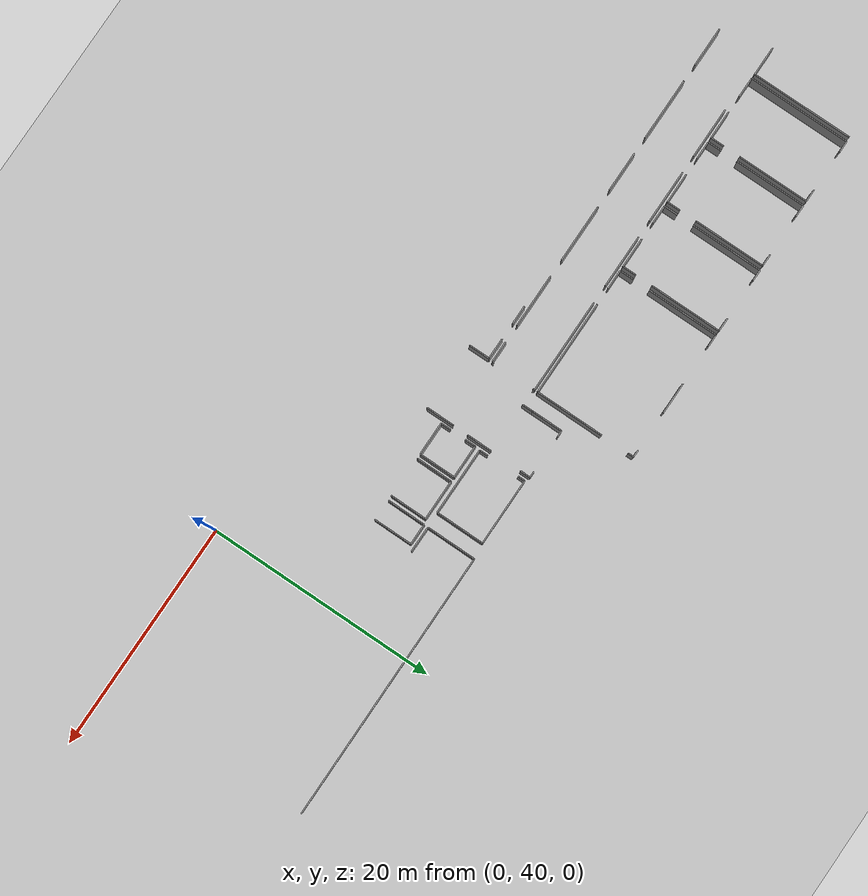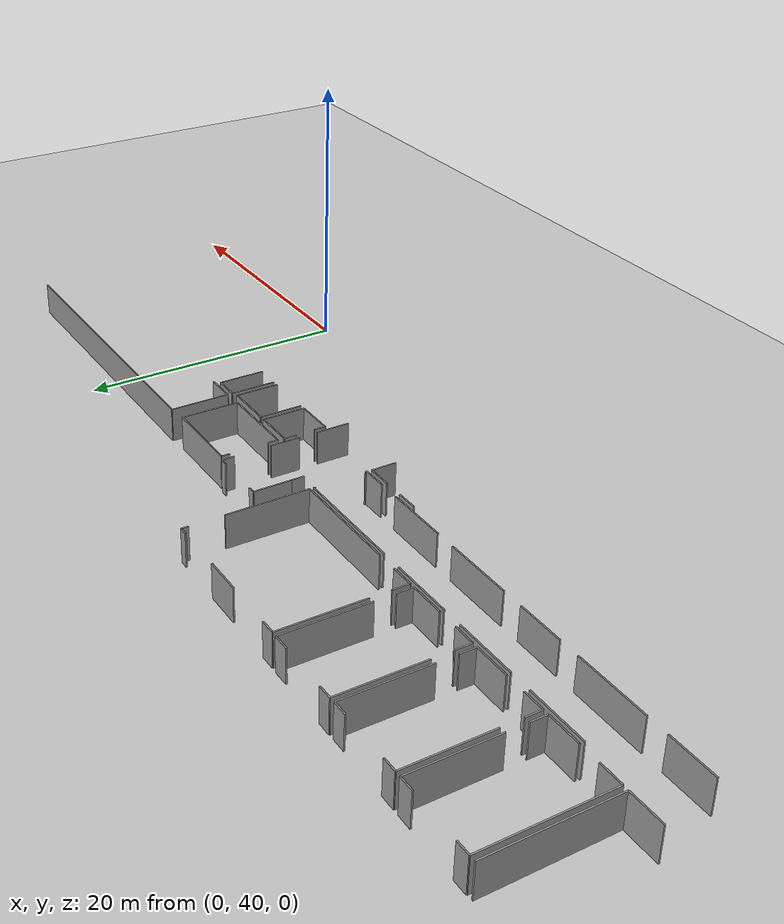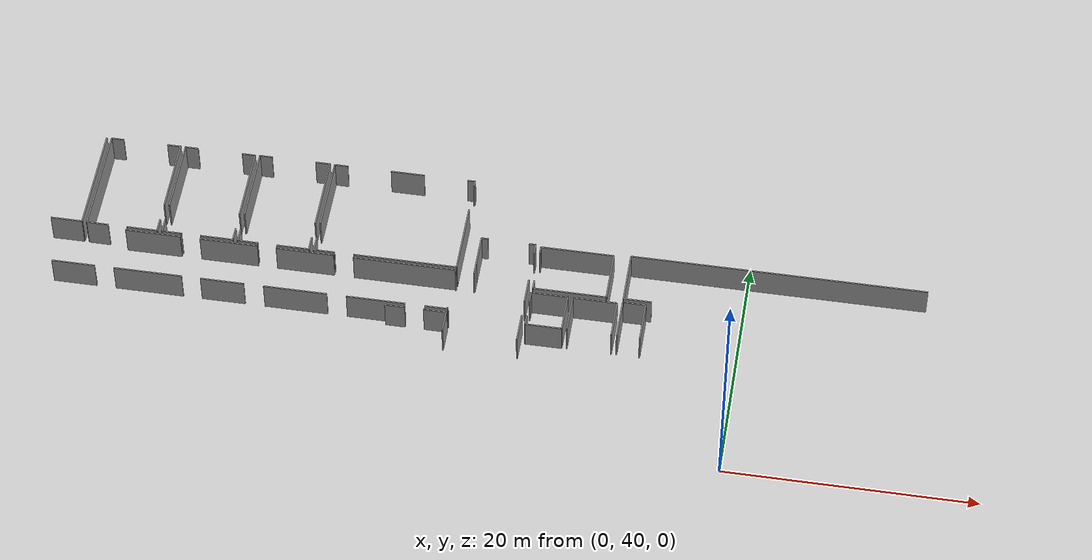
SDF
<sdf version="1.6">
 <world name="default">
  <model name="ground_plane">
   <static>1</static>
   <link name="link">
    <collision name="collision">
     <geometry><plane><normal>0 0 1</normal><size>100 100</size></plane></geometry>
     <surface><friction><ode><mu>100</mu><mu2>50</mu2></ode></friction></surface>
    </collision>
    <visual name="visual">
     <cast_shadows>0</cast_shadows>
     <geometry><plane><normal>0 0 1</normal><size>100 100</size></plane></geometry>
     <material>
      <script><uri>file://media/materials/scripts/gazebo.material</uri><name>Gazebo/Grey</name></script>
     </material>
    </visual>
   </link>
  </model>
  <model name="0510035517_A_40_1_105">
   <static>1</static>
   <link name="Wall_24">
    <collision name="Wall_24_Collision">
     <geometry><box><size>8.91303380924 0.1 2.5</size></box></geometry>
     <pose>4.45651690462 0 1.25 0 0 0</pose>
    </collision>
    <visual name="Wall_24_Visual">
     <pose>4.45651690462 0 1.25 0 0 0</pose>
     <geometry><box><size>8.91303380924 0.1 2.5</size></box></geometry>
     <material>
      <script><uri>file://media/materials/scripts/gazebo.material</uri><name>Gazebo/Grey</name></script>
      <ambient>1 1 1 1</ambient>
     </material>
    </visual>
    <pose>41.3195834366 -0.0386318725657 0 0 0 -1.57079632679</pose>
   </link>
   <link name="Wall_25">
    <collision name="Wall_25_Collision">
     <geometry><box><size>2.54029977825 0.1 2.5</size></box></geometry>
     <pose>1.27014988912 0 1.25 0 0 0</pose>
    </collision>
    <visual name="Wall_25_Visual">
     <pose>1.27014988912 0 1.25 0 0 0</pose>
     <geometry><box><size>2.54029977825 0.1 2.5</size></box></geometry>
     <material>
      <script><uri>file://media/materials/scripts/gazebo.material</uri><name>Gazebo/Grey</name></script>
      <ambient>1 1 1 1</ambient>
     </material>
    </visual>
    <pose>41.3195834366 -8.95166568181 0 0 0 3.14159265359</pose>
   </link>
   <link name="Wall_27">
    <collision name="Wall_27_Collision">
     <geometry><box><size>8.94454928423 0.1 2.5</size></box></geometry>
     <pose>4.47227464212 0 1.25 0 0 0</pose>
    </collision>
    <visual name="Wall_27_Visual">
     <pose>4.47227464212 0 1.25 0 0 0</pose>
     <geometry><box><size>8.94454928423 0.1 2.5</size></box></geometry>
     <material>
      <script><uri>file://media/materials/scripts/gazebo.material</uri><name>Gazebo/Grey</name></script>
      <ambient>1 1 1 1</ambient>
     </material>
    </visual>
    <pose>41.7186100151 -8.96996498987 0 0 0 1.57079632679</pose>
   </link>
   <link name="Wall_28">
    <collision name="Wall_28_Collision">
     <geometry><box><size>1.02755697884 0.1 2.5</size></box></geometry>
     <pose>0.513778489418 0 1.25 0 0 0</pose>
    </collision>
    <visual name="Wall_28_Visual">
     <pose>0.513778489418 0 1.25 0 0 0</pose>
     <geometry><box><size>1.02755697884 0.1 2.5</size></box></geometry>
     <material>
      <script><uri>file://media/materials/scripts/gazebo.material</uri><name>Gazebo/Grey</name></script>
      <ambient>1 1 1 1</ambient>
     </material>
    </visual>
    <pose>41.7186100151 -0.0254157056353 0 0 0 0.0</pose>
   </link>
   <link name="Wall_29">
    <collision name="Wall_29_Collision">
     <geometry><box><size>1.08804635825 0.1 2.5</size></box></geometry>
     <pose>0.544023179124 0 1.25 0 0 0</pose>
    </collision>
    <visual name="Wall_29_Visual">
     <pose>0.544023179124 0 1.25 0 0 0</pose>
     <geometry><box><size>1.08804635825 0.1 2.5</size></box></geometry>
     <material>
      <script><uri>file://media/materials/scripts/gazebo.material</uri><name>Gazebo/Grey</name></script>
      <ambient>1 1 1 1</ambient>
     </material>
    </visual>
    <pose>46.3610428064 -0.0254157056353 0 0 0 0.0</pose>
   </link>
   <link name="Wall_30">
    <collision name="Wall_30_Collision">
     <geometry><box><size>6.27412109313 0.1 2.5</size></box></geometry>
     <pose>3.13706054656 0 1.25 0 0 0</pose>
    </collision>
    <visual name="Wall_30_Visual">
     <pose>3.13706054656 0 1.25 0 0 0</pose>
     <geometry><box><size>6.27412109313 0.1 2.5</size></box></geometry>
     <material>
      <script><uri>file://media/materials/scripts/gazebo.material</uri><name>Gazebo/Grey</name></script>
      <ambient>1 1 1 1</ambient>
     </material>
    </visual>
    <pose>47.4490891646 -0.0254157056353 0 0 0 -1.57079632679</pose>
   </link>
   <link name="Wall_31">
    <collision name="Wall_31_Collision">
     <geometry><box><size>1.18793008139 0.1 2.5</size></box></geometry>
     <pose>0.593965040697 0 1.25 0 0 0</pose>
    </collision>
    <visual name="Wall_31_Visual">
     <pose>0.593965040697 0 1.25 0 0 0</pose>
     <geometry><box><size>1.18793008139 0.1 2.5</size></box></geometry>
     <material>
      <script><uri>file://media/materials/scripts/gazebo.material</uri><name>Gazebo/Grey</name></script>
      <ambient>1 1 1 1</ambient>
     </material>
    </visual>
    <pose>47.4490891646 -7.79347197601 0 0 0 -1.57079632679</pose>
   </link>
   <link name="Wall_32">
    <collision name="Wall_32_Collision">
     <geometry><box><size>2.46735670307 0.1 2.5</size></box></geometry>
     <pose>1.23367835154 0 1.25 0 0 0</pose>
    </collision>
    <visual name="Wall_32_Visual">
     <pose>1.23367835154 0 1.25 0 0 0</pose>
     <geometry><box><size>2.46735670307 0.1 2.5</size></box></geometry>
     <material>
      <script><uri>file://media/materials/scripts/gazebo.material</uri><name>Gazebo/Grey</name></script>
      <ambient>1 1 1 1</ambient>
     </material>
    </visual>
    <pose>47.4490891646 -8.9814020574 0 0 0 3.14159265359</pose>
   </link>
   <link name="Wall_33">
    <collision name="Wall_33_Collision">
     <geometry><box><size>1.75550004482 0.1 2.5</size></box></geometry>
     <pose>0.877750022412 0 1.25 0 0 0</pose>
    </collision>
    <visual name="Wall_33_Visual">
     <pose>0.877750022412 0 1.25 0 0 0</pose>
     <geometry><box><size>1.75550004482 0.1 2.5</size></box></geometry>
     <material>
      <script><uri>file://media/materials/scripts/gazebo.material</uri><name>Gazebo/Grey</name></script>
      <ambient>1 1 1 1</ambient>
     </material>
    </visual>
    <pose>43.4740728033 -8.9814020574 0 0 0 3.13507761619</pose>
   </link>
   <link name="Wall_34">
    <collision name="Wall_34_Collision">
     <geometry><box><size>1.06568053729 0.1 2.5</size></box></geometry>
     <pose>0.532840268644 0 1.25 0 0 0</pose>
    </collision>
    <visual name="Wall_34_Visual">
     <pose>0.532840268644 0 1.25 0 0 0</pose>
     <geometry><box><size>1.06568053729 0.1 2.5</size></box></geometry>
     <material>
      <script><uri>file://media/materials/scripts/gazebo.material</uri><name>Gazebo/Grey</name></script>
      <ambient>1 1 1 1</ambient>
     </material>
    </visual>
    <pose>47.856757083 -0.0264323338607 0 0 0 0.0</pose>
   </link>
   <link name="Wall_35">
    <collision name="Wall_35_Collision">
     <geometry><box><size>1.06059739616 0.1 2.5</size></box></geometry>
     <pose>0.53029869808 0 1.25 0 0 0</pose>
    </collision>
    <visual name="Wall_35_Visual">
     <pose>0.53029869808 0 1.25 0 0 0</pose>
     <geometry><box><size>1.06059739616 0.1 2.5</size></box></geometry>
     <material>
      <script><uri>file://media/materials/scripts/gazebo.material</uri><name>Gazebo/Grey</name></script>
      <ambient>1 1 1 1</ambient>
     </material>
    </visual>
    <pose>52.5482421863 -0.0264323338607 0 0 0 0.0</pose>
   </link>
   <link name="Wall_36">
    <collision name="Wall_36_Collision">
     <geometry><box><size>6.27971254837 0.1 2.5</size></box></geometry>
     <pose>3.13985627418 0 1.25 0 0 0</pose>
    </collision>
    <visual name="Wall_36_Visual">
     <pose>3.13985627418 0 1.25 0 0 0</pose>
     <geometry><box><size>6.27971254837 0.1 2.5</size></box></geometry>
     <material>
      <script><uri>file://media/materials/scripts/gazebo.material</uri><name>Gazebo/Grey</name></script>
      <ambient>1 1 1 1</ambient>
     </material>
    </visual>
    <pose>53.6088395824 -0.0264323338607 0 0 0 -1.57079632679</pose>
   </link>
   <link name="Wall_37">
    <collision name="Wall_37_Collision">
     <geometry><box><size>1.17522222858 0.1 2.5</size></box></geometry>
     <pose>0.587611114288 0 1.25 0 0 0</pose>
    </collision>
    <visual name="Wall_37_Visual">
     <pose>0.587611114288 0 1.25 0 0 0</pose>
     <geometry><box><size>1.17522222858 0.1 2.5</size></box></geometry>
     <material>
      <script><uri>file://media/materials/scripts/gazebo.material</uri><name>Gazebo/Grey</name></script>
      <ambient>1 1 1 1</ambient>
     </material>
    </visual>
    <pose>53.6088395824 -7.80008005947 0 0 0 -1.57079632679</pose>
   </link>
   <link name="Wall_38">
    <collision name="Wall_38_Collision">
     <geometry><box><size>2.6465374278 0.1 2.5</size></box></geometry>
     <pose>1.3232687139 0 1.25 0 0 0</pose>
    </collision>
    <visual name="Wall_38_Visual">
     <pose>1.3232687139 0 1.25 0 0 0</pose>
     <geometry><box><size>2.6465374278 0.1 2.5</size></box></geometry>
     <material>
      <script><uri>file://media/materials/scripts/gazebo.material</uri><name>Gazebo/Grey</name></script>
      <ambient>1 1 1 1</ambient>
     </material>
    </visual>
    <pose>53.6088395824 -8.97530228805 0 0 0 3.14159265359</pose>
   </link>
   <link name="Wall_39">
    <collision name="Wall_39_Collision">
     <geometry><box><size>1.59508968567 0.1 2.5</size></box></geometry>
     <pose>0.797544842836 0 1.25 0 0 0</pose>
    </collision>
    <visual name="Wall_39_Visual">
     <pose>0.797544842836 0 1.25 0 0 0</pose>
     <geometry><box><size>1.59508968567 0.1 2.5</size></box></geometry>
     <material>
      <script><uri>file://media/materials/scripts/gazebo.material</uri><name>Gazebo/Grey</name></script>
      <ambient>1 1 1 1</ambient>
     </material>
    </visual>
    <pose>49.4538800252 -8.97530228805 0 0 0 3.14159265359</pose>
   </link>
   <link name="Wall_40">
    <collision name="Wall_40_Collision">
     <geometry><box><size>1.19657142131 0.1 2.5</size></box></geometry>
     <pose>0.598285710655 0 1.25 0 0 0</pose>
    </collision>
    <visual name="Wall_40_Visual">
     <pose>0.598285710655 0 1.25 0 0 0</pose>
     <geometry><box><size>1.19657142131 0.1 2.5</size></box></geometry>
     <material>
      <script><uri>file://media/materials/scripts/gazebo.material</uri><name>Gazebo/Grey</name></script>
      <ambient>1 1 1 1</ambient>
     </material>
    </visual>
    <pose>47.8587903395 -8.97530228805 0 0 0 1.57079632679</pose>
   </link>
   <link name="Wall_41">
    <collision name="Wall_41_Collision">
     <geometry><box><size>6.21922350132 0.1 2.5</size></box></geometry>
     <pose>3.10961175066 0 1.25 0 0 0</pose>
    </collision>
    <visual name="Wall_41_Visual">
     <pose>3.10961175066 0 1.25 0 0 0</pose>
     <geometry><box><size>6.21922350132 0.1 2.5</size></box></geometry>
     <material>
      <script><uri>file://media/materials/scripts/gazebo.material</uri><name>Gazebo/Grey</name></script>
      <ambient>1 1 1 1</ambient>
     </material>
    </visual>
    <pose>47.8587903395 -6.24565550282 0 0 0 1.57112325772</pose>
   </link>
   <link name="Wall_42">
    <collision name="Wall_42_Collision">
     <geometry><box><size>1.20190871949 0.1 2.5</size></box></geometry>
     <pose>0.600954359747 0 1.25 0 0 0</pose>
    </collision>
    <visual name="Wall_42_Visual">
     <pose>0.600954359747 0 1.25 0 0 0</pose>
     <geometry><box><size>1.20190871949 0.1 2.5</size></box></geometry>
     <material>
      <script><uri>file://media/materials/scripts/gazebo.material</uri><name>Gazebo/Grey</name></script>
      <ambient>1 1 1 1</ambient>
     </material>
    </visual>
    <pose>54.0045621192 -8.98470609913 0 0 0 1.57079632679</pose>
   </link>
   <link name="Wall_43">
    <collision name="Wall_43_Collision">
     <geometry><box><size>6.25226358628 0.1 2.5</size></box></geometry>
     <pose>3.12613179314 0 1.25 0 0 0</pose>
    </collision>
    <visual name="Wall_43_Visual">
     <pose>3.12613179314 0 1.25 0 0 0</pose>
     <geometry><box><size>6.25226358628 0.1 2.5</size></box></geometry>
     <material>
      <script><uri>file://media/materials/scripts/gazebo.material</uri><name>Gazebo/Grey</name></script>
      <ambient>1 1 1 1</ambient>
     </material>
    </visual>
    <pose>54.0045621192 -6.25226358628 0 0 0 1.57079632679</pose>
   </link>
   <link name="Wall_44">
    <collision name="Wall_44_Collision">
     <geometry><box><size>1.02221968065 0.1 2.5</size></box></geometry>
     <pose>0.511109840326 0 1.25 0 0 0</pose>
    </collision>
    <visual name="Wall_44_Visual">
     <pose>0.511109840326 0 1.25 0 0 0</pose>
     <geometry><box><size>1.02221968065 0.1 2.5</size></box></geometry>
     <material>
      <script><uri>file://media/materials/scripts/gazebo.material</uri><name>Gazebo/Grey</name></script>
      <ambient>1 1 1 1</ambient>
     </material>
    </visual>
    <pose>54.0045621192 -0.0 0 0 0 0.0</pose>
   </link>
   <link name="Wall_45">
    <collision name="Wall_45_Collision">
     <geometry><box><size>1.17776379914 0.1 2.5</size></box></geometry>
     <pose>0.58888189957 0 1.25 0 0 0</pose>
    </collision>
    <visual name="Wall_45_Visual">
     <pose>0.58888189957 0 1.25 0 0 0</pose>
     <geometry><box><size>1.17776379914 0.1 2.5</size></box></geometry>
     <material>
      <script><uri>file://media/materials/scripts/gazebo.material</uri><name>Gazebo/Grey</name></script>
      <ambient>1 1 1 1</ambient>
     </material>
    </visual>
    <pose>58.6025174256 -0.0 0 0 0 0.0</pose>
   </link>
   <link name="Wall_46">
    <collision name="Wall_46_Collision">
     <geometry><box><size>6.31046555219 0.1 2.5</size></box></geometry>
     <pose>3.15523277609 0 1.25 0 0 0</pose>
    </collision>
    <visual name="Wall_46_Visual">
     <pose>3.15523277609 0 1.25 0 0 0</pose>
     <geometry><box><size>6.31046555219 0.1 2.5</size></box></geometry>
     <material>
      <script><uri>file://media/materials/scripts/gazebo.material</uri><name>Gazebo/Grey</name></script>
      <ambient>1 1 1 1</ambient>
     </material>
    </visual>
    <pose>59.7802812248 -0.0 0 0 0 -1.57079632679</pose>
   </link>
   <link name="Wall_47">
    <collision name="Wall_47_Collision">
     <geometry><box><size>1.18818423845 0.1 2.5</size></box></geometry>
     <pose>0.594092119225 0 1.25 0 0 0</pose>
    </collision>
    <visual name="Wall_47_Visual">
     <pose>0.594092119225 0 1.25 0 0 0</pose>
     <geometry><box><size>1.18818423845 0.1 2.5</size></box></geometry>
     <material>
      <script><uri>file://media/materials/scripts/gazebo.material</uri><name>Gazebo/Grey</name></script>
      <ambient>1 1 1 1</ambient>
     </material>
    </visual>
    <pose>59.7802812248 -7.81278791229 0 0 0 -1.57079632679</pose>
   </link>
   <link name="Wall_48">
    <collision name="Wall_48_Collision">
     <geometry><box><size>2.60663476996 0.1 2.5</size></box></geometry>
     <pose>1.30331738498 0 1.25 0 0 0</pose>
    </collision>
    <visual name="Wall_48_Visual">
     <pose>1.30331738498 0 1.25 0 0 0</pose>
     <geometry><box><size>2.60663476996 0.1 2.5</size></box></geometry>
     <material>
      <script><uri>file://media/materials/scripts/gazebo.material</uri><name>Gazebo/Grey</name></script>
      <ambient>1 1 1 1</ambient>
     </material>
    </visual>
    <pose>59.7802812248 -9.00097215074 0 0 0 3.14159265359</pose>
   </link>
   <link name="Wall_49">
    <collision name="Wall_49_Collision">
     <geometry><box><size>1.65159265391 0.1 2.5</size></box></geometry>
     <pose>0.825796326955 0 1.25 0 0 0</pose>
    </collision>
    <visual name="Wall_49_Visual">
     <pose>0.825796326955 0 1.25 0 0 0</pose>
     <geometry><box><size>1.65159265391 0.1 2.5</size></box></geometry>
     <material>
      <script><uri>file://media/materials/scripts/gazebo.material</uri><name>Gazebo/Grey</name></script>
      <ambient>1 1 1 1</ambient>
     </material>
    </visual>
    <pose>55.6560746713 -9.00097215074 0 0 0 3.13174378768</pose>
   </link>
   <link name="Wall_50">
    <collision name="Wall_50_Collision">
     <geometry><box><size>1.0982126405 0.1 2.5</size></box></geometry>
     <pose>0.549106320251 0 1.25 0 0 0</pose>
    </collision>
    <visual name="Wall_50_Visual">
     <pose>0.549106320251 0 1.25 0 0 0</pose>
     <geometry><box><size>1.0982126405 0.1 2.5</size></box></geometry>
     <material>
      <script><uri>file://media/materials/scripts/gazebo.material</uri><name>Gazebo/Grey</name></script>
      <ambient>1 1 1 1</ambient>
     </material>
    </visual>
    <pose>60.1721914057 -0.0144869522121 0 0 0 0.0</pose>
   </link>
   <link name="Wall_51">
    <collision name="Wall_51_Collision">
     <geometry><box><size>2.73142588463 0.1 2.5</size></box></geometry>
     <pose>1.36571294231 0 1.25 0 0 0</pose>
    </collision>
    <visual name="Wall_51_Visual">
     <pose>1.36571294231 0 1.25 0 0 0</pose>
     <geometry><box><size>2.73142588463 0.1 2.5</size></box></geometry>
     <material>
      <script><uri>file://media/materials/scripts/gazebo.material</uri><name>Gazebo/Grey</name></script>
      <ambient>1 1 1 1</ambient>
     </material>
    </visual>
    <pose>64.8103035271 -0.0144869522121 0 0 0 0.0</pose>
   </link>
   <link name="Wall_52">
    <collision name="Wall_52_Collision">
     <geometry><box><size>0.611756034642 0.1 2.5</size></box></geometry>
     <pose>0.305878017321 0 1.25 0 0 0</pose>
    </collision>
    <visual name="Wall_52_Visual">
     <pose>0.305878017321 0 1.25 0 0 0</pose>
     <geometry><box><size>0.611756034642 0.1 2.5</size></box></geometry>
     <material>
      <script><uri>file://media/materials/scripts/gazebo.material</uri><name>Gazebo/Grey</name></script>
      <ambient>1 1 1 1</ambient>
     </material>
    </visual>
    <pose>71.0709542962 -0.0144869522121 0 0 0 0.0</pose>
   </link>
   <link name="Wall_53">
    <collision name="Wall_53_Collision">
     <geometry><box><size>0.497131202226 0.1 2.5</size></box></geometry>
     <pose>0.248565601113 0 1.25 0 0 0</pose>
    </collision>
    <visual name="Wall_53_Visual">
     <pose>0.248565601113 0 1.25 0 0 0</pose>
     <geometry><box><size>0.497131202226 0.1 2.5</size></box></geometry>
     <material>
      <script><uri>file://media/materials/scripts/gazebo.material</uri><name>Gazebo/Grey</name></script>
      <ambient>1 1 1 1</ambient>
     </material>
    </visual>
    <pose>71.6827103308 -0.0144869522121 0 0 0 -1.57079632679</pose>
   </link>
   <link name="Wall_54">
    <collision name="Wall_54_Collision">
     <geometry><box><size>6.01996403678 0.1 2.5</size></box></geometry>
     <pose>3.00998201839 0 1.25 0 0 0</pose>
    </collision>
    <visual name="Wall_54_Visual">
     <pose>3.00998201839 0 1.25 0 0 0</pose>
     <geometry><box><size>6.01996403678 0.1 2.5</size></box></geometry>
     <material>
      <script><uri>file://media/materials/scripts/gazebo.material</uri><name>Gazebo/Grey</name></script>
      <ambient>1 1 1 1</ambient>
     </material>
    </visual>
    <pose>71.6827103308 -2.98456631275 0 0 0 -1.57079632679</pose>
   </link>
   <link name="Wall_55">
    <collision name="Wall_55_Collision">
     <geometry><box><size>8.30458181633 0.1 2.5</size></box></geometry>
     <pose>4.15229090817 0 1.25 0 0 0</pose>
    </collision>
    <visual name="Wall_55_Visual">
     <pose>4.15229090817 0 1.25 0 0 0</pose>
     <geometry><box><size>8.30458181633 0.1 2.5</size></box></geometry>
     <material>
      <script><uri>file://media/materials/scripts/gazebo.material</uri><name>Gazebo/Grey</name></script>
      <ambient>1 1 1 1</ambient>
     </material>
    </visual>
    <pose>71.6827103308 -9.00453034953 0 0 0 3.14159265359</pose>
   </link>
   <link name="Wall_56">
    <collision name="Wall_56_Collision">
     <geometry><box><size>1.69929407878 0.1 2.5</size></box></geometry>
     <pose>0.849647039388 0 1.25 0 0 0</pose>
    </collision>
    <visual name="Wall_56_Visual">
     <pose>0.849647039388 0 1.25 0 0 0</pose>
     <geometry><box><size>1.69929407878 0.1 2.5</size></box></geometry>
     <material>
      <script><uri>file://media/materials/scripts/gazebo.material</uri><name>Gazebo/Grey</name></script>
      <ambient>1 1 1 1</ambient>
     </material>
    </visual>
    <pose>61.8697063851 -9.00453034953 0 0 0 3.14159265359</pose>
   </link>
   <link name="Wall_57">
    <collision name="Wall_57_Collision">
     <geometry><box><size>1.2443529479 0.1 2.5</size></box></geometry>
     <pose>0.622176473952 0 1.25 0 0 0</pose>
    </collision>
    <visual name="Wall_57_Visual">
     <pose>0.622176473952 0 1.25 0 0 0</pose>
     <geometry><box><size>1.2443529479 0.1 2.5</size></box></geometry>
     <material>
      <script><uri>file://media/materials/scripts/gazebo.material</uri><name>Gazebo/Grey</name></script>
      <ambient>1 1 1 1</ambient>
     </material>
    </visual>
    <pose>60.1704123063 -9.00453034953 0 0 0 1.57079632679</pose>
   </link>
   <link name="Wall_58">
    <collision name="Wall_58_Collision">
     <geometry><box><size>6.25023058304 0.1 2.5</size></box></geometry>
     <pose>3.12511529152 0 1.25 0 0 0</pose>
    </collision>
    <visual name="Wall_58_Visual">
     <pose>3.12511529152 0 1.25 0 0 0</pose>
     <geometry><box><size>6.25023058304 0.1 2.5</size></box></geometry>
     <material>
      <script><uri>file://media/materials/scripts/gazebo.material</uri><name>Gazebo/Grey</name></script>
      <ambient>1 1 1 1</ambient>
     </material>
    </visual>
    <pose>60.1704123063 -6.26471728204 0 0 0 1.57051168139</pose>
   </link>
   <link name="Wall_90">
    <collision name="Wall_90_Collision">
     <geometry><box><size>1.5983937274 0.1 2.5</size></box></geometry>
     <pose>0.799196863702 0 1.25 0 0 0</pose>
    </collision>
    <visual name="Wall_90_Visual">
     <pose>0.799196863702 0 1.25 0 0 0</pose>
     <geometry><box><size>1.5983937274 0.1 2.5</size></box></geometry>
     <material>
      <script><uri>file://media/materials/scripts/gazebo.material</uri><name>Gazebo/Grey</name></script>
      <ambient>1 1 1 1</ambient>
     </material>
    </visual>
    <pose>66.7218187479 -13.6093478965 0 0 0 0.0</pose>
   </link>
   <link name="Wall_91">
    <collision name="Wall_91_Collision">
     <geometry><box><size>1.82052699466 0.1 2.5</size></box></geometry>
     <pose>0.910263497328 0 1.25 0 0 0</pose>
    </collision>
    <visual name="Wall_91_Visual">
     <pose>0.910263497328 0 1.25 0 0 0</pose>
     <geometry><box><size>1.82052699466 0.1 2.5</size></box></geometry>
     <material>
      <script><uri>file://media/materials/scripts/gazebo.material</uri><name>Gazebo/Grey</name></script>
      <ambient>1 1 1 1</ambient>
     </material>
    </visual>
    <pose>69.8154184378 -13.6093478965 0 0 0 0.0</pose>
   </link>
   <link name="Wall_92">
    <collision name="Wall_92_Collision">
     <geometry><box><size>1.84695932852 0.1 2.5</size></box></geometry>
     <pose>0.923479664259 0 1.25 0 0 0</pose>
    </collision>
    <visual name="Wall_92_Visual">
     <pose>0.923479664259 0 1.25 0 0 0</pose>
     <geometry><box><size>1.84695932852 0.1 2.5</size></box></geometry>
     <material>
      <script><uri>file://media/materials/scripts/gazebo.material</uri><name>Gazebo/Grey</name></script>
      <ambient>1 1 1 1</ambient>
     </material>
    </visual>
    <pose>71.6359454325 -13.6093478965 0 0 0 -1.57079632679</pose>
   </link>
   <link name="Wall_109">
    <collision name="Wall_109_Collision">
     <geometry><box><size>4.4586772396 0.1 2.5</size></box></geometry>
     <pose>2.2293386198 0 1.25 0 0 0</pose>
    </collision>
    <visual name="Wall_109_Visual">
     <pose>2.2293386198 0 1.25 0 0 0</pose>
     <geometry><box><size>4.4586772396 0.1 2.5</size></box></geometry>
     <material>
      <script><uri>file://media/materials/scripts/gazebo.material</uri><name>Gazebo/Grey</name></script>
      <ambient>1 1 1 1</ambient>
     </material>
    </visual>
    <pose>44.9532668713 -9.2975734355 0 0 0 0.0</pose>
   </link>
   <link name="Wall_110">
    <collision name="Wall_110_Collision">
     <geometry><box><size>4.66454445525 0.1 2.5</size></box></geometry>
     <pose>2.33227222762 0 1.25 0 0 0</pose>
    </collision>
    <visual name="Wall_110_Visual">
     <pose>2.33227222762 0 1.25 0 0 0</pose>
     <geometry><box><size>4.66454445525 0.1 2.5</size></box></geometry>
     <material>
      <script><uri>file://media/materials/scripts/gazebo.material</uri><name>Gazebo/Grey</name></script>
      <ambient>1 1 1 1</ambient>
     </material>
    </visual>
    <pose>51.0024589695 -9.2975734355 0 0 0 0.0</pose>
   </link>
   <link name="Wall_111">
    <collision name="Wall_111_Collision">
     <geometry><box><size>4.65793637178 0.1 2.5</size></box></geometry>
     <pose>2.32896818589 0 1.25 0 0 0</pose>
    </collision>
    <visual name="Wall_111_Visual">
     <pose>2.32896818589 0 1.25 0 0 0</pose>
     <geometry><box><size>4.65793637178 0.1 2.5</size></box></geometry>
     <material>
      <script><uri>file://media/materials/scripts/gazebo.material</uri><name>Gazebo/Grey</name></script>
      <ambient>1 1 1 1</ambient>
     </material>
    </visual>
    <pose>57.1825419518 -9.2975734355 0 0 0 0.0</pose>
   </link>
   <link name="Wall_112">
    <collision name="Wall_112_Collision">
     <geometry><box><size>8.2552753474 0.1 2.5</size></box></geometry>
     <pose>4.1276376737 0 1.25 0 0 0</pose>
    </collision>
    <visual name="Wall_112_Visual">
     <pose>4.1276376737 0 1.25 0 0 0</pose>
     <geometry><box><size>8.2552753474 0.1 2.5</size></box></geometry>
     <material>
      <script><uri>file://media/materials/scripts/gazebo.material</uri><name>Gazebo/Grey</name></script>
      <ambient>1 1 1 1</ambient>
     </material>
    </visual>
    <pose>63.4159979159 -9.2975734355 0 0 0 0.0</pose>
   </link>
   <link name="Wall_113">
    <collision name="Wall_113_Collision">
     <geometry><box><size>0.136736496318 0.1 2.5</size></box></geometry>
     <pose>0.068368248159 0 1.25 0 0 0</pose>
    </collision>
    <visual name="Wall_113_Visual">
     <pose>0.068368248159 0 1.25 0 0 0</pose>
     <geometry><box><size>0.136736496318 0.1 2.5</size></box></geometry>
     <material>
      <script><uri>file://media/materials/scripts/gazebo.material</uri><name>Gazebo/Grey</name></script>
      <ambient>1 1 1 1</ambient>
     </material>
    </visual>
    <pose>71.6712732633 -9.2975734355 0 0 0 -1.57079632679</pose>
   </link>
   <link name="Wall_114">
    <collision name="Wall_114_Collision">
     <geometry><box><size>0.130890884022 0.1 2.5</size></box></geometry>
     <pose>0.0654454420109 0 1.25 0 0 0</pose>
    </collision>
    <visual name="Wall_114_Visual">
     <pose>0.0654454420109 0 1.25 0 0 0</pose>
     <geometry><box><size>0.130890884022 0.1 2.5</size></box></geometry>
     <material>
      <script><uri>file://media/materials/scripts/gazebo.material</uri><name>Gazebo/Grey</name></script>
      <ambient>1 1 1 1</ambient>
     </material>
    </visual>
    <pose>71.6712732633 -13.1221288195 0 0 0 -1.57079632679</pose>
   </link>
   <link name="Wall_115">
    <collision name="Wall_115_Collision">
     <geometry><box><size>1.81798542409 0.1 2.5</size></box></geometry>
     <pose>0.908992712046 0 1.25 0 0 0</pose>
    </collision>
    <visual name="Wall_115_Visual">
     <pose>0.908992712046 0 1.25 0 0 0</pose>
     <geometry><box><size>1.81798542409 0.1 2.5</size></box></geometry>
     <material>
      <script><uri>file://media/materials/scripts/gazebo.material</uri><name>Gazebo/Grey</name></script>
      <ambient>1 1 1 1</ambient>
     </material>
    </visual>
    <pose>71.6712732633 -13.2530197035 0 0 0 3.14159265359</pose>
   </link>
   <link name="Wall_116">
    <collision name="Wall_116_Collision">
     <geometry><box><size>4.69199341733 0.1 2.5</size></box></geometry>
     <pose>2.34599670867 0 1.25 0 0 0</pose>
    </collision>
    <visual name="Wall_116_Visual">
     <pose>2.34599670867 0 1.25 0 0 0</pose>
     <geometry><box><size>4.69199341733 0.1 2.5</size></box></geometry>
     <material>
      <script><uri>file://media/materials/scripts/gazebo.material</uri><name>Gazebo/Grey</name></script>
      <ambient>1 1 1 1</ambient>
     </material>
    </visual>
    <pose>68.2820889168 -13.2530197035 0 0 0 3.14159265359</pose>
   </link>
   <link name="Wall_117">
    <collision name="Wall_117_Collision">
     <geometry><box><size>5.09229078109 0.1 2.5</size></box></geometry>
     <pose>2.54614539054 0 1.25 0 0 0</pose>
    </collision>
    <visual name="Wall_117_Visual">
     <pose>2.54614539054 0 1.25 0 0 0</pose>
     <geometry><box><size>5.09229078109 0.1 2.5</size></box></geometry>
     <material>
      <script><uri>file://media/materials/scripts/gazebo.material</uri><name>Gazebo/Grey</name></script>
      <ambient>1 1 1 1</ambient>
     </material>
    </visual>
    <pose>62.0425331834 -13.2530197035 0 0 0 3.14159265359</pose>
   </link>
   <link name="Wall_118">
    <collision name="Wall_118_Collision">
     <geometry><box><size>3.50228423654 0.1 2.5</size></box></geometry>
     <pose>1.75114211827 0 1.25 0 0 0</pose>
    </collision>
    <visual name="Wall_118_Visual">
     <pose>1.75114211827 0 1.25 0 0 0</pose>
     <geometry><box><size>3.50228423654 0.1 2.5</size></box></geometry>
     <material>
      <script><uri>file://media/materials/scripts/gazebo.material</uri><name>Gazebo/Grey</name></script>
      <ambient>1 1 1 1</ambient>
     </material>
    </visual>
    <pose>55.3765019094 -13.2530197035 0 0 0 3.14159265359</pose>
   </link>
   <link name="Wall_119">
    <collision name="Wall_119_Collision">
     <geometry><box><size>5.48521759021 0.1 2.5</size></box></geometry>
     <pose>2.7426087951 0 1.25 0 0 0</pose>
    </collision>
    <visual name="Wall_119_Visual">
     <pose>2.7426087951 0 1.25 0 0 0</pose>
     <geometry><box><size>5.48521759021 0.1 2.5</size></box></geometry>
     <material>
      <script><uri>file://media/materials/scripts/gazebo.material</uri><name>Gazebo/Grey</name></script>
      <ambient>1 1 1 1</ambient>
     </material>
    </visual>
    <pose>50.3629998157 -13.2530197035 0 0 0 3.14159265359</pose>
   </link>
   <link name="Wall_120">
    <collision name="Wall_120_Collision">
     <geometry><box><size>3.48754312728 0.1 2.5</size></box></geometry>
     <pose>1.74377156364 0 1.25 0 0 0</pose>
    </collision>
    <visual name="Wall_120_Visual">
     <pose>1.74377156364 0 1.25 0 0 0</pose>
     <geometry><box><size>3.48754312728 0.1 2.5</size></box></geometry>
     <material>
      <script><uri>file://media/materials/scripts/gazebo.material</uri><name>Gazebo/Grey</name></script>
      <ambient>1 1 1 1</ambient>
     </material>
    </visual>
    <pose>43.337590464 -13.2530197035 0 0 0 3.14159265359</pose>
   </link>
   <link name="Wall_159">
    <collision name="Wall_159_Collision">
     <geometry><box><size>0.759421284383 0.1 2.5</size></box></geometry>
     <pose>0.379710642191 0 1.25 0 0 0</pose>
    </collision>
    <visual name="Wall_159_Visual">
     <pose>0.379710642191 0 1.25 0 0 0</pose>
     <geometry><box><size>0.759421284383 0.1 2.5</size></box></geometry>
     <material>
      <script><uri>file://media/materials/scripts/gazebo.material</uri><name>Gazebo/Grey</name></script>
      <ambient>1 1 1 1</ambient>
     </material>
    </visual>
    <pose>77.970555905 -10.1810233634 0 0 0 1.57079632679</pose>
   </link>
   <link name="Wall_160">
    <collision name="Wall_160_Collision">
     <geometry><box><size>0.631326127981 0.1 2.5</size></box></geometry>
     <pose>0.31566306399 0 1.25 0 0 0</pose>
    </collision>
    <visual name="Wall_160_Visual">
     <pose>0.31566306399 0 1.25 0 0 0</pose>
     <geometry><box><size>0.631326127981 0.1 2.5</size></box></geometry>
     <material>
      <script><uri>file://media/materials/scripts/gazebo.material</uri><name>Gazebo/Grey</name></script>
      <ambient>1 1 1 1</ambient>
     </material>
    </visual>
    <pose>77.970555905 -6.58038034603 0 0 0 1.57079632679</pose>
   </link>
   <link name="Wall_161">
    <collision name="Wall_161_Collision">
     <geometry><box><size>5.85018712313 0.1 2.5</size></box></geometry>
     <pose>2.92509356157 0 1.25 0 0 0</pose>
    </collision>
    <visual name="Wall_161_Visual">
     <pose>2.92509356157 0 1.25 0 0 0</pose>
     <geometry><box><size>5.85018712313 0.1 2.5</size></box></geometry>
     <material>
      <script><uri>file://media/materials/scripts/gazebo.material</uri><name>Gazebo/Grey</name></script>
      <ambient>1 1 1 1</ambient>
     </material>
    </visual>
    <pose>77.970555905 -5.94905421805 0 0 0 0.0</pose>
   </link>
   <link name="Wall_162">
    <collision name="Wall_162_Collision">
     <geometry><box><size>4.23730644352 0.1 2.5</size></box></geometry>
     <pose>2.11865322176 0 1.25 0 0 0</pose>
    </collision>
    <visual name="Wall_162_Visual">
     <pose>2.11865322176 0 1.25 0 0 0</pose>
     <geometry><box><size>4.23730644352 0.1 2.5</size></box></geometry>
     <material>
      <script><uri>file://media/materials/scripts/gazebo.material</uri><name>Gazebo/Grey</name></script>
      <ambient>1 1 1 1</ambient>
     </material>
    </visual>
    <pose>83.8207430282 -5.94905421805 0 0 0 -1.57079632679</pose>
   </link>
   <link name="Wall_163">
    <collision name="Wall_163_Collision">
     <geometry><box><size>5.85018955782 0.1 2.5</size></box></geometry>
     <pose>2.92509477891 0 1.25 0 0 0</pose>
    </collision>
    <visual name="Wall_163_Visual">
     <pose>2.92509477891 0 1.25 0 0 0</pose>
     <geometry><box><size>5.85018955782 0.1 2.5</size></box></geometry>
     <material>
      <script><uri>file://media/materials/scripts/gazebo.material</uri><name>Gazebo/Grey</name></script>
      <ambient>1 1 1 1</ambient>
     </material>
    </visual>
    <pose>83.8207430282 -10.1863606616 0 0 0 3.14068032436</pose>
   </link>
   <link name="Wall_164">
    <collision name="Wall_164_Collision">
     <geometry><box><size>2.91365649403 0.1 2.5</size></box></geometry>
     <pose>1.45682824702 0 1.25 0 0 0</pose>
    </collision>
    <visual name="Wall_164_Visual">
     <pose>1.45682824702 0 1.25 0 0 0</pose>
     <geometry><box><size>2.91365649403 0.1 2.5</size></box></geometry>
     <material>
      <script><uri>file://media/materials/scripts/gazebo.material</uri><name>Gazebo/Grey</name></script>
      <ambient>1 1 1 1</ambient>
     </material>
    </visual>
    <pose>77.9067624839 -10.6420642636 0 0 0 0.0</pose>
   </link>
   <link name="Wall_165">
    <collision name="Wall_165_Collision">
     <geometry><box><size>3.18255465965 0.1 2.5</size></box></geometry>
     <pose>1.59127732983 0 1.25 0 0 0</pose>
    </collision>
    <visual name="Wall_165_Visual">
     <pose>1.59127732983 0 1.25 0 0 0</pose>
     <geometry><box><size>3.18255465965 0.1 2.5</size></box></geometry>
     <material>
      <script><uri>file://media/materials/scripts/gazebo.material</uri><name>Gazebo/Grey</name></script>
      <ambient>1 1 1 1</ambient>
     </material>
    </visual>
    <pose>80.8204189779 -10.6420642636 0 0 0 -1.57079632679</pose>
   </link>
   <link name="Wall_166">
    <collision name="Wall_166_Collision">
     <geometry><box><size>2.89942369887 0.1 2.5</size></box></geometry>
     <pose>1.44971184944 0 1.25 0 0 0</pose>
    </collision>
    <visual name="Wall_166_Visual">
     <pose>1.44971184944 0 1.25 0 0 0</pose>
     <geometry><box><size>2.89942369887 0.1 2.5</size></box></geometry>
     <material>
      <script><uri>file://media/materials/scripts/gazebo.material</uri><name>Gazebo/Grey</name></script>
      <ambient>1 1 1 1</ambient>
     </material>
    </visual>
    <pose>80.8204189779 -13.8246189233 0 0 0 3.14159265359</pose>
   </link>
   <link name="Wall_167">
    <collision name="Wall_167_Collision">
     <geometry><box><size>0.859813321642 0.1 2.5</size></box></geometry>
     <pose>0.429906660821 0 1.25 0 0 0</pose>
    </collision>
    <visual name="Wall_167_Visual">
     <pose>0.429906660821 0 1.25 0 0 0</pose>
     <geometry><box><size>0.859813321642 0.1 2.5</size></box></geometry>
     <material>
      <script><uri>file://media/materials/scripts/gazebo.material</uri><name>Gazebo/Grey</name></script>
      <ambient>1 1 1 1</ambient>
     </material>
    </visual>
    <pose>77.920995279 -13.8246189233 0 0 0 1.57079632679</pose>
   </link>
   <link name="Wall_168">
    <collision name="Wall_168_Collision">
     <geometry><box><size>0.909231195061 0.1 2.5</size></box></geometry>
     <pose>0.454615597531 0 1.25 0 0 0</pose>
    </collision>
    <visual name="Wall_168_Visual">
     <pose>0.454615597531 0 1.25 0 0 0</pose>
     <geometry><box><size>0.909231195061 0.1 2.5</size></box></geometry>
     <material>
      <script><uri>file://media/materials/scripts/gazebo.material</uri><name>Gazebo/Grey</name></script>
      <ambient>1 1 1 1</ambient>
     </material>
    </visual>
    <pose>77.920995279 -11.5511840542 0 0 0 1.58645062524</pose>
   </link>
   <link name="Wall_169">
    <collision name="Wall_169_Collision">
     <geometry><box><size>3.18407960199 0.1 2.5</size></box></geometry>
     <pose>1.592039801 0 1.25 0 0 0</pose>
    </collision>
    <visual name="Wall_169_Visual">
     <pose>1.592039801 0 1.25 0 0 0</pose>
     <geometry><box><size>3.18407960199 0.1 2.5</size></box></geometry>
     <material>
      <script><uri>file://media/materials/scripts/gazebo.material</uri><name>Gazebo/Grey</name></script>
      <ambient>1 1 1 1</ambient>
     </material>
    </visual>
    <pose>81.2224954411 -13.8294479073 0 0 0 1.57079632679</pose>
   </link>
   <link name="Wall_170">
    <collision name="Wall_170_Collision">
     <geometry><box><size>3.51905860226 0.1 2.5</size></box></geometry>
     <pose>1.75952930113 0 1.25 0 0 0</pose>
    </collision>
    <visual name="Wall_170_Visual">
     <pose>1.75952930113 0 1.25 0 0 0</pose>
     <geometry><box><size>3.51905860226 0.1 2.5</size></box></geometry>
     <material>
      <script><uri>file://media/materials/scripts/gazebo.material</uri><name>Gazebo/Grey</name></script>
      <ambient>1 1 1 1</ambient>
     </material>
    </visual>
    <pose>81.2224954411 -10.6453683053 0 0 0 0.0</pose>
   </link>
   <link name="Wall_171">
    <collision name="Wall_171_Collision">
     <geometry><box><size>3.22093237516 0.1 2.5</size></box></geometry>
     <pose>1.61046618758 0 1.25 0 0 0</pose>
    </collision>
    <visual name="Wall_171_Visual">
     <pose>1.61046618758 0 1.25 0 0 0</pose>
     <geometry><box><size>3.22093237516 0.1 2.5</size></box></geometry>
     <material>
      <script><uri>file://media/materials/scripts/gazebo.material</uri><name>Gazebo/Grey</name></script>
      <ambient>1 1 1 1</ambient>
     </material>
    </visual>
    <pose>84.7415540433 -10.6453683053 0 0 0 -1.57079632679</pose>
   </link>
   <link name="Wall_175">
    <collision name="Wall_175_Collision">
     <geometry><box><size>3.34877337451 0.1 2.5</size></box></geometry>
     <pose>1.67438668725 0 1.25 0 0 0</pose>
    </collision>
    <visual name="Wall_175_Visual">
     <pose>1.67438668725 0 1.25 0 0 0</pose>
     <geometry><box><size>3.34877337451 0.1 2.5</size></box></geometry>
     <material>
      <script><uri>file://media/materials/scripts/gazebo.material</uri><name>Gazebo/Grey</name></script>
      <ambient>1 1 1 1</ambient>
     </material>
    </visual>
    <pose>85.1700628403 -13.8342768914 0 0 0 1.57079632679</pose>
   </link>
   <link name="Wall_176">
    <collision name="Wall_176_Collision">
     <geometry><box><size>1.81951036643 0.1 2.5</size></box></geometry>
     <pose>0.909755183215 0 1.25 0 0 0</pose>
    </collision>
    <visual name="Wall_176_Visual">
     <pose>0.909755183215 0 1.25 0 0 0</pose>
     <geometry><box><size>1.81951036643 0.1 2.5</size></box></geometry>
     <material>
      <script><uri>file://media/materials/scripts/gazebo.material</uri><name>Gazebo/Grey</name></script>
      <ambient>1 1 1 1</ambient>
     </material>
    </visual>
    <pose>85.1700628403 -10.4855035169 0 0 0 0.0</pose>
   </link>
   <link name="Wall_177">
    <collision name="Wall_177_Collision">
     <geometry><box><size>3.40087557106 0.1 2.5</size></box></geometry>
     <pose>1.70043778553 0 1.25 0 0 0</pose>
    </collision>
    <visual name="Wall_177_Visual">
     <pose>1.70043778553 0 1.25 0 0 0</pose>
     <geometry><box><size>3.40087557106 0.1 2.5</size></box></geometry>
     <material>
      <script><uri>file://media/materials/scripts/gazebo.material</uri><name>Gazebo/Grey</name></script>
      <ambient>1 1 1 1</ambient>
     </material>
    </visual>
    <pose>86.9895732068 -10.4855035169 0 0 0 -1.57079632679</pose>
   </link>
   <link name="Wall_181">
    <collision name="Wall_181_Collision">
     <geometry><box><size>4.33744432372 0.1 2.5</size></box></geometry>
     <pose>2.16872216186 0 1.25 0 0 0</pose>
    </collision>
    <visual name="Wall_181_Visual">
     <pose>2.16872216186 0 1.25 0 0 0</pose>
     <geometry><box><size>4.33744432372 0.1 2.5</size></box></geometry>
     <material>
      <script><uri>file://media/materials/scripts/gazebo.material</uri><name>Gazebo/Grey</name></script>
      <ambient>1 1 1 1</ambient>
     </material>
    </visual>
    <pose>85.1751459815 -10.1246004969 0 0 0 1.57079632679</pose>
   </link>
   <link name="Wall_182">
    <collision name="Wall_182_Collision">
     <geometry><box><size>23.6216109745 0.1 2.5</size></box></geometry>
     <pose>11.8108054873 0 1.25 0 0 0</pose>
    </collision>
    <visual name="Wall_182_Visual">
     <pose>11.8108054873 0 1.25 0 0 0</pose>
     <geometry><box><size>23.6216109745 0.1 2.5</size></box></geometry>
     <material>
      <script><uri>file://media/materials/scripts/gazebo.material</uri><name>Gazebo/Grey</name></script>
      <ambient>1 1 1 1</ambient>
     </material>
    </visual>
    <pose>85.1751459815 -5.78715617316 0 0 0 0.0</pose>
   </link>
   <link name="Wall_187">
    <collision name="Wall_187_Collision">
     <geometry><box><size>2.24626193387 0.1 2.5</size></box></geometry>
     <pose>1.12313096694 0 1.25 0 0 0</pose>
    </collision>
    <visual name="Wall_187_Visual">
     <pose>1.12313096694 0 1.25 0 0 0</pose>
     <geometry><box><size>2.24626193387 0.1 2.5</size></box></geometry>
     <material>
      <script><uri>file://media/materials/scripts/gazebo.material</uri><name>Gazebo/Grey</name></script>
      <ambient>1 1 1 1</ambient>
     </material>
    </visual>
    <pose>87.4213860455 -10.1345126221 0 0 0 3.13717991916</pose>
   </link>
   <link name="Wall_282">
    <collision name="Wall_282_Collision">
     <geometry><box><size>2.73091757051 0.1 2.5</size></box></geometry>
     <pose>1.36545878526 0 1.25 0 0 0</pose>
    </collision>
    <visual name="Wall_282_Visual">
     <pose>1.36545878526 0 1.25 0 0 0</pose>
     <geometry><box><size>2.73091757051 0.1 2.5</size></box></geometry>
     <material>
      <script><uri>file://media/materials/scripts/gazebo.material</uri><name>Gazebo/Grey</name></script>
      <ambient>1 1 1 1</ambient>
     </material>
    </visual>
    <pose>73.1497048601 -8.49697870799 0 0 0 1.57079632679</pose>
   </link>
   <link name="Wall_283">
    <collision name="Wall_283_Collision">
     <geometry><box><size>0.537796331243 0.1 2.5</size></box></geometry>
     <pose>0.268898165621 0 1.25 0 0 0</pose>
    </collision>
    <visual name="Wall_283_Visual">
     <pose>0.268898165621 0 1.25 0 0 0</pose>
     <geometry><box><size>0.537796331243 0.1 2.5</size></box></geometry>
     <material>
      <script><uri>file://media/materials/scripts/gazebo.material</uri><name>Gazebo/Grey</name></script>
      <ambient>1 1 1 1</ambient>
     </material>
    </visual>
    <pose>73.1497048601 -5.76606113748 0 0 0 0.0</pose>
   </link>
   <link name="Wall_284">
    <collision name="Wall_284_Collision">
     <geometry><box><size>0.520259494355 0.1 2.5</size></box></geometry>
     <pose>0.260129747177 0 1.25 0 0 0</pose>
    </collision>
    <visual name="Wall_284_Visual">
     <pose>0.260129747177 0 1.25 0 0 0</pose>
     <geometry><box><size>0.520259494355 0.1 2.5</size></box></geometry>
     <material>
      <script><uri>file://media/materials/scripts/gazebo.material</uri><name>Gazebo/Grey</name></script>
      <ambient>1 1 1 1</ambient>
     </material>
    </visual>
    <pose>77.0039966197 -5.76606113748 0 0 0 0.0</pose>
   </link>
   <link name="Wall_285">
    <collision name="Wall_285_Collision">
     <geometry><box><size>0.905053277673 0.1 2.5</size></box></geometry>
     <pose>0.452526638836 0 1.25 0 0 0</pose>
    </collision>
    <visual name="Wall_285_Visual">
     <pose>0.452526638836 0 1.25 0 0 0</pose>
     <geometry><box><size>0.905053277673 0.1 2.5</size></box></geometry>
     <material>
      <script><uri>file://media/materials/scripts/gazebo.material</uri><name>Gazebo/Grey</name></script>
      <ambient>1 1 1 1</ambient>
     </material>
    </visual>
    <pose>77.5242561141 -5.76606113748 0 0 0 -1.57079632679</pose>
   </link>
   <link name="Wall_286">
    <collision name="Wall_286_Collision">
     <geometry><box><size>2.19591696689 0.1 2.5</size></box></geometry>
     <pose>1.09795848344 0 1.25 0 0 0</pose>
    </collision>
    <visual name="Wall_286_Visual">
     <pose>1.09795848344 0 1.25 0 0 0</pose>
     <geometry><box><size>2.19591696689 0.1 2.5</size></box></geometry>
     <material>
      <script><uri>file://media/materials/scripts/gazebo.material</uri><name>Gazebo/Grey</name></script>
      <ambient>1 1 1 1</ambient>
     </material>
    </visual>
    <pose>77.5242561141 -9.41067332558 0 0 0 -1.57079632679</pose>
   </link>
   <link name="Wall_287">
    <collision name="Wall_287_Collision">
     <geometry><box><size>2.44016189804 0.1 2.5</size></box></geometry>
     <pose>1.22008094902 0 1.25 0 0 0</pose>
    </collision>
    <visual name="Wall_287_Visual">
     <pose>1.22008094902 0 1.25 0 0 0</pose>
     <geometry><box><size>2.44016189804 0.1 2.5</size></box></geometry>
     <material>
      <script><uri>file://media/materials/scripts/gazebo.material</uri><name>Gazebo/Grey</name></script>
      <ambient>1 1 1 1</ambient>
     </material>
    </visual>
    <pose>77.5242561141 -12.9792925538 0 0 0 -1.57079632679</pose>
   </link>
   <link name="Wall_320">
    <collision name="Wall_320_Collision">
     <geometry><box><size>0.935556301688 0.1 2.5</size></box></geometry>
     <pose>0.467778150844 0 1.25 0 0 0</pose>
    </collision>
    <visual name="Wall_320_Visual">
     <pose>0.467778150844 0 1.25 0 0 0</pose>
     <geometry><box><size>0.935556301688 0.1 2.5</size></box></geometry>
     <material>
      <script><uri>file://media/materials/scripts/gazebo.material</uri><name>Gazebo/Grey</name></script>
      <ambient>1 1 1 1</ambient>
     </material>
    </visual>
    <pose>73.1525005877 -9.43253083243 0 0 0 1.57378463629</pose>
   </link>
   <pose>-94.6 63.7835382475 0 0 0 0</pose>
  </model>
 </world>
</sdf>
